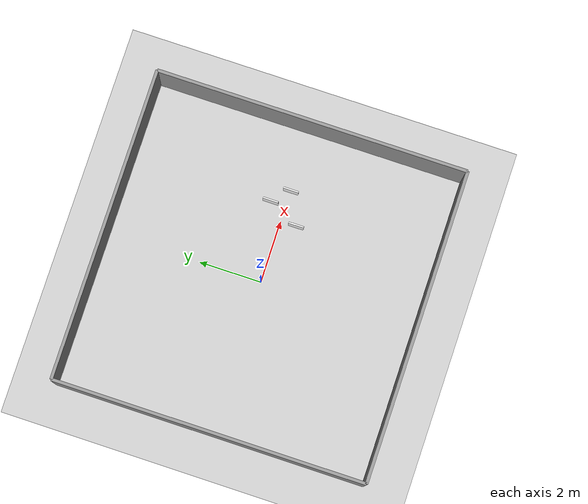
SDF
<?xml version="1.0" ?>
<sdf version="1.8">
  <world name="aruco_world">
    <physics name="1ms" type="ignored">
      <max_step_size>0.003</max_step_size>
      <real_time_factor>1.0</real_time_factor>
    </physics>

    <plugin filename="ignition-gazebo-physics-system" name="ignition::gazebo::systems::Physics"></plugin>
    <plugin filename="ignition-gazebo-user-commands-system" name="ignition::gazebo::systems::UserCommands"></plugin>
    <plugin filename="ignition-gazebo-scene-broadcaster-system" name="ignition::gazebo::systems::SceneBroadcaster"></plugin>
    <plugin filename="ignition-gazebo-contact-system" name="ignition::gazebo::systems::Contact"></plugin>

    <scene>
      <ambient>0.6 0.6 0.6 1.0</ambient>
      <background>0.7 0.7 0.8 1.0</background>
      <grid>true</grid>
      <shadows>false</shadows>
    </scene>

    <light name="sun" type="directional">
      <cast_shadows>false</cast_shadows>
      <pose>0 0 10 0 0 0</pose>
      <diffuse>0.8 0.8 0.8 1</diffuse>
      <specular>0.2 0.2 0.2 1</specular>
      <attenuation>
        <range>1000</range>
        <constant>0.9</constant>
        <linear>0.01</linear>
        <quadratic>0.001</quadratic>
      </attenuation>
      <direction>-0.5 0.1 -0.9</direction>
    </light>

    <model name="ground_plane">
      <static>true</static>
      <link name="link">
        <collision name="collision">
          <geometry>
            <plane>
              <normal>0 0 1</normal>
              <size>100 100</size>
            </plane>
          </geometry>
          <surface>
            <friction>
              <ode/>
            </friction>
          </surface>
        </collision>
        <visual name="visual">
          <geometry>
            <plane>
              <normal>0 0 1</normal>
              <size>100 100</size>
            </plane>
          </geometry>
          <material>
            <ambient>0.8 0.8 0.8 1</ambient>
            <diffuse>0.8 0.8 0.8 1</diffuse>
            <specular>0.8 0.8 0.8 1</specular>
          </material>
        </visual>
      </link>
      <pose>0 0 0 0 0 0</pose>
    </model>

    <!-- Spawn 3 ArUco markers in front of the robot (robot spawns at 0,0 facing +X) -->
    <include>
      <uri>model://aruco_marker_0</uri>
      <name>aruco_marker_0</name>
      <pose>2.0 -0.5 0.25 0 1.57 3.14</pose>
    </include>

    <include>
      <uri>model://aruco_marker_1</uri>
      <name>aruco_marker_1</name>
      <pose>2.5 0.5 0.25 0 1.57 3.14</pose>
    </include>

    <include>
      <uri>model://aruco_marker_2</uri>
      <name>aruco_marker_2</name>
      <pose>3.0 0.0 0.25 0 1.57 3.14</pose>
    </include>

    <!-- 10x10 Room walls around the rover -->
    <model name="wall_front">
      <static>true</static>
      <pose>5 0 1 0 0 0</pose>
      <link name="link">
        <collision name="collision">
          <geometry>
            <box>
              <size>0.1 10 2</size>
            </box>
          </geometry>
        </collision>
        <visual name="visual">
          <geometry>
            <box>
              <size>0.1 10 2</size>
            </box>
          </geometry>
          <material>
            <ambient>0.6 0.6 0.6 1</ambient>
            <diffuse>0.6 0.6 0.6 1</diffuse>
            <specular>0.1 0.1 0.1 1</specular>
          </material>
        </visual>
      </link>
    </model>

    <model name="wall_back">
      <static>true</static>
      <pose>-5 0 1 0 0 0</pose>
      <link name="link">
        <collision name="collision">
          <geometry>
            <box>
              <size>0.1 10 2</size>
            </box>
          </geometry>
        </collision>
        <visual name="visual">
          <geometry>
            <box>
              <size>0.1 10 2</size>
            </box>
          </geometry>
          <material>
            <ambient>0.6 0.6 0.6 1</ambient>
            <diffuse>0.6 0.6 0.6 1</diffuse>
            <specular>0.1 0.1 0.1 1</specular>
          </material>
        </visual>
      </link>
    </model>

    <model name="wall_left">
      <static>true</static>
      <pose>0 5 1 0 0 0</pose>
      <link name="link">
        <collision name="collision">
          <geometry>
            <box>
              <size>10 0.1 2</size>
            </box>
          </geometry>
        </collision>
        <visual name="visual">
          <geometry>
            <box>
              <size>10 0.1 2</size>
            </box>
          </geometry>
          <material>
            <ambient>0.6 0.6 0.6 1</ambient>
            <diffuse>0.6 0.6 0.6 1</diffuse>
            <specular>0.1 0.1 0.1 1</specular>
          </material>
        </visual>
      </link>
    </model>

    <model name="wall_right">
      <static>true</static>
      <pose>0 -5 1 0 0 0</pose>
      <link name="link">
        <collision name="collision">
          <geometry>
            <box>
              <size>10 0.1 2</size>
            </box>
          </geometry>
        </collision>
        <visual name="visual">
          <geometry>
            <box>
              <size>10 0.1 2</size>
            </box>
          </geometry>
          <material>
            <ambient>0.6 0.6 0.6 1</ambient>
            <diffuse>0.6 0.6 0.6 1</diffuse>
            <specular>0.1 0.1 0.1 1</specular>
          </material>
        </visual>
      </link>
    </model>

  </world>
</sdf>

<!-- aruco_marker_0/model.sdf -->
<sdf version="1.6">
  <model name="aruco_marker_0">
    <static>true</static>
    <link name="link">
      <collision name="collision">
        <geometry>
          <box>
            <size>0.5 0.5 0.05</size>
          </box>
        </geometry>
      </collision>
      <visual name="visual">
        <geometry>
          <box>
            <size>0.5 0.5 0.05</size>
          </box>
        </geometry>
        <material>
          <diffuse>1.0 1.0 1.0 1.0</diffuse>
          <specular>0.1 0.1 0.1 1.0</specular>
          <pbr>
            <metal>
              <albedo_map>materials/textures/marker_0.png</albedo_map>
            </metal>
          </pbr>
        </material>
      </visual>
    </link>
  </model>
</sdf>

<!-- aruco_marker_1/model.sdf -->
<sdf version="1.6">
  <model name="aruco_marker_1">
    <static>true</static>
    <link name="link">
      <collision name="collision">
        <geometry>
          <box>
            <size>0.5 0.5 0.05</size>
          </box>
        </geometry>
      </collision>
      <visual name="visual">
        <geometry>
          <box>
            <size>0.5 0.5 0.05</size>
          </box>
        </geometry>
        <material>
          <diffuse>1.0 1.0 1.0 1.0</diffuse>
          <specular>0.1 0.1 0.1 1.0</specular>
          <pbr>
            <metal>
              <albedo_map>materials/textures/marker_1.png</albedo_map>
            </metal>
          </pbr>
        </material>
      </visual>
    </link>
  </model>
</sdf>

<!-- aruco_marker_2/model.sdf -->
<sdf version="1.6">
  <model name="aruco_marker_2">
    <static>true</static>
    <link name="link">
      <collision name="collision">
        <geometry>
          <box>
            <size>0.5 0.5 0.05</size>
          </box>
        </geometry>
      </collision>
      <visual name="visual">
        <geometry>
          <box>
            <size>0.5 0.5 0.05</size>
          </box>
        </geometry>
        <material>
          <diffuse>1.0 1.0 1.0 1.0</diffuse>
          <specular>0.1 0.1 0.1 1.0</specular>
          <pbr>
            <metal>
              <albedo_map>materials/textures/marker_2.png</albedo_map>
            </metal>
          </pbr>
        </material>
      </visual>
    </link>
  </model>
</sdf>
